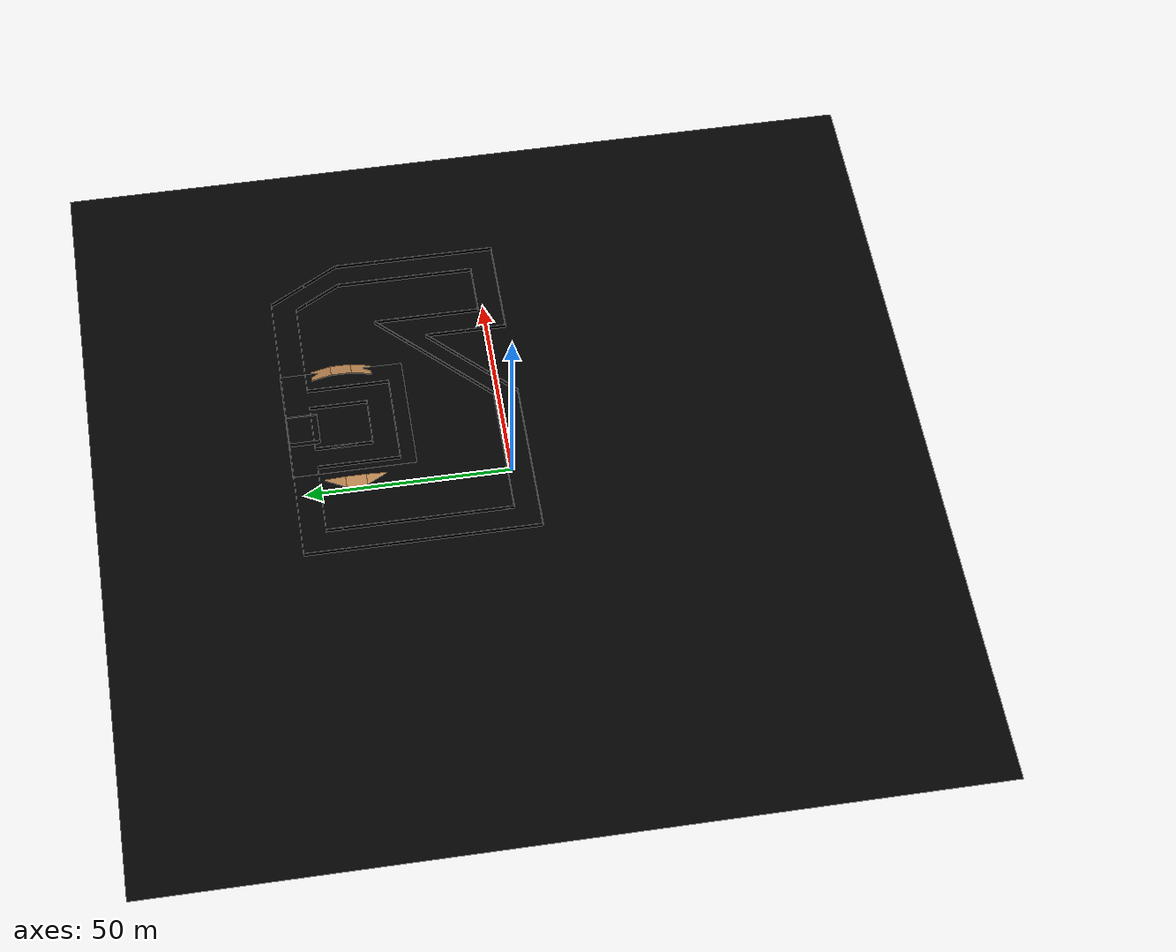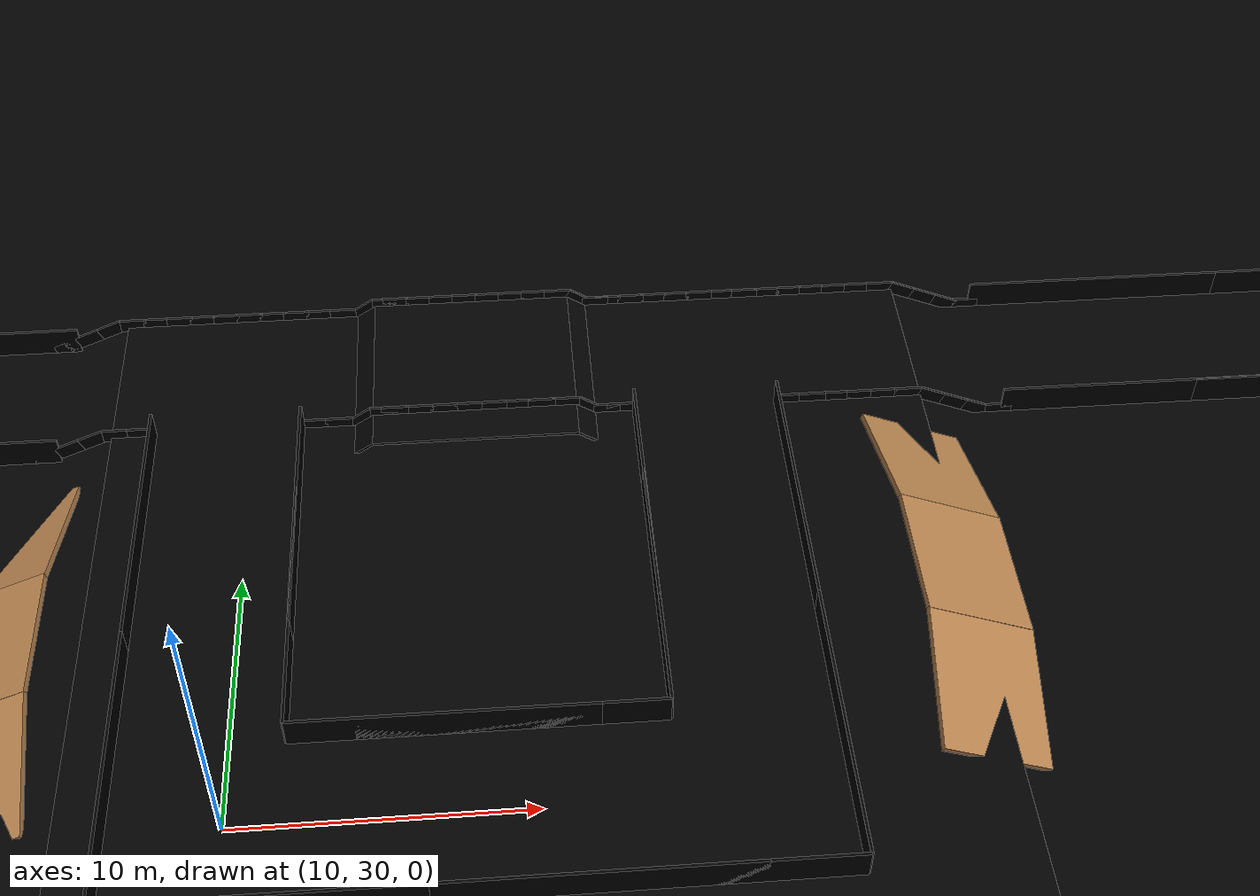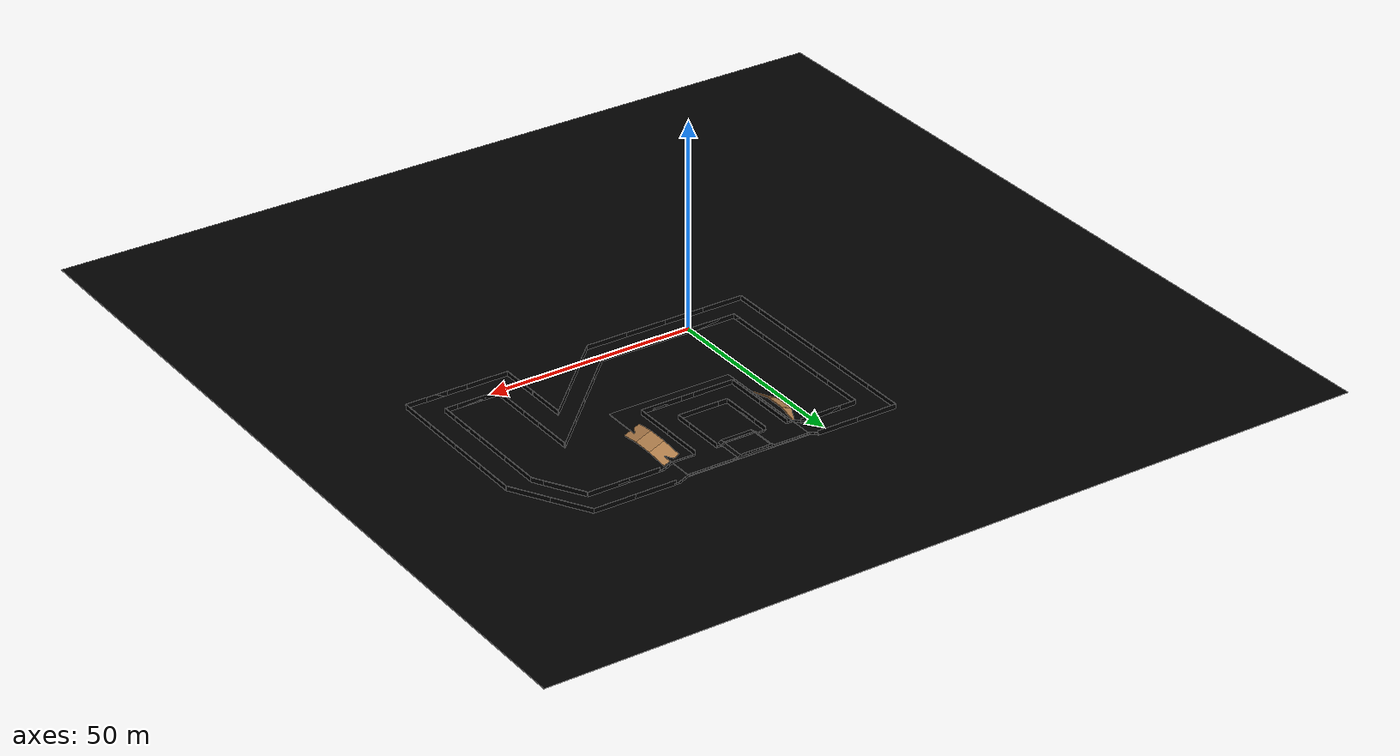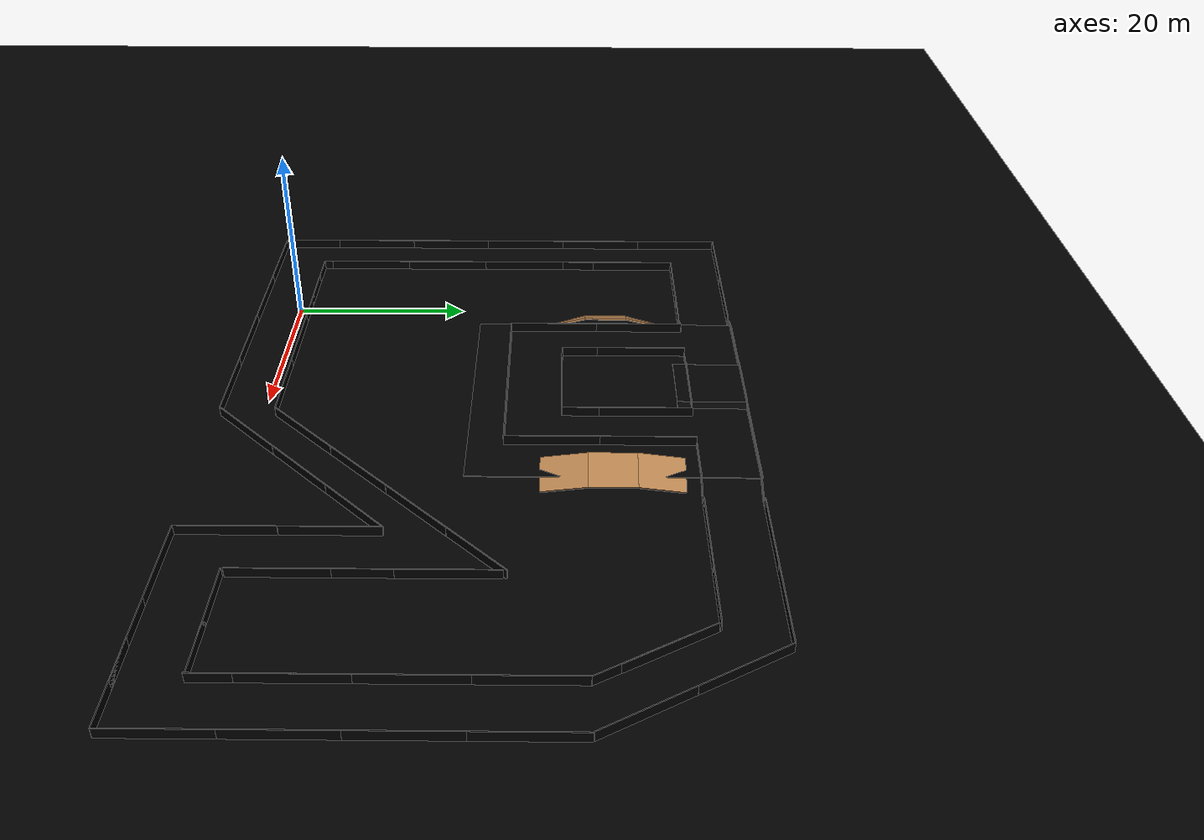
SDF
<sdf version="1.4">
 <world name="default">
  <light name="sun" type="directional">
   <pose>0 0 10 0 -0 0</pose>
   <diffuse>1.0 1.0 1.0 1</diffuse>
   <specular>0.2 0.2 0.2 1</specular>
   <attenuation>
    <range>1000</range>
    <constant>0.9</constant>
    <linear>0.01</linear>
    <quadratic>0.001</quadratic>
   </attenuation>
   <direction>-0.5 -0.5 -1.0</direction>
  </light>
  <include><uri>model://surface</uri></include>
  <include><uri>model://ramp_groundplane</uri><pose>20 37.5 1.1  0 0 0</pose></include>
  <include><uri>model://ramp_groundplane_2</uri><pose>18.34 48.55 1.573  0 0 0</pose></include>
  <include><uri>model://short_ramp</uri><pose>14.205 48.55 1.3  0 -0.6 0</pose></include>
  <include><uri>model://short_ramp</uri><pose>22.475 48.55 1.3  0 0.6 0</pose></include>
  <include><uri>model://3m_ramp</uri><pose>3.64 37.5 0.52  0 -0.4 0</pose></include>
  <include><uri>model://3m_ramp</uri><pose>36.36 37.5 0.52  0 0.4 0</pose></include>
  <include><uri>model://wall</uri><pose>38.1 52.3 0.15  0 0 0</pose></include>
  <include><uri>model://wall</uri><pose>37.2 52.3 0.3  0 0.4 0</pose></include>
  <include><uri>model://wall</uri><pose>36.3 52.3 0.68  0 0.4 0</pose></include>
  <include><uri>model://wall</uri><pose>35.4 52.3 1.06  0 0.4 0</pose></include>
  <include><uri>model://wall</uri><pose>34.5 52.3 1.24  0 0 0</pose></include>
  <include><uri>model://wall</uri><pose>33.6 52.3 1.24  0 0 0</pose></include>
  <include><uri>model://wall</uri><pose>32.7 52.3 1.24  0 0 0</pose></include>
  <include><uri>model://wall</uri><pose>31.8 52.3 1.24  0 0 0</pose></include>
  <include><uri>model://wall</uri><pose>30.9 52.3 1.24  0 0 0</pose></include>
  <include><uri>model://wall</uri><pose>30 52.3 1.24  0 0 0</pose></include>
  <include><uri>model://wall</uri><pose>29.1 52.3 1.24  0 0 0</pose></include>
  <include><uri>model://wall</uri><pose>28.2 52.3 1.24  0 0 0</pose></include>
  <include><uri>model://wall</uri><pose>27.3 52.3 1.24  0 0 0</pose></include>
  <include><uri>model://wall</uri><pose>26.4 52.3 1.24  0 0 0</pose></include>
  <include><uri>model://wall</uri><pose>25.5 52.3 1.24  0 0 0</pose></include>
  <include><uri>model://wall</uri><pose>24.6 52.3 1.24  0 0 0</pose></include>
  <include><uri>model://wall</uri><pose>23.7 52.3 1.24  0 0 0</pose></include>
  <include><uri>model://wall</uri><pose>23.2 52.3 1.24  0 0 0</pose></include>
  <include><uri>model://wall</uri><pose>22.5 52.3 1.44  0 0.6 0</pose></include>
  <include><uri>model://wall</uri><pose>21.7 52.3 1.683  0 0 0</pose></include>
  <include><uri>model://wall</uri><pose>20.8 52.3 1.683  0 0 0</pose></include>
  <include><uri>model://wall</uri><pose>19.9 52.3 1.683  0 0 0</pose></include>
  <include><uri>model://wall</uri><pose>19.0 52.3 1.683  0 0 0</pose></include>
  <include><uri>model://wall</uri><pose>18.1 52.3 1.683  0 0 0</pose></include>
  <include><uri>model://wall</uri><pose>17.2 52.3 1.683  0 0 0</pose></include>
  <include><uri>model://wall</uri><pose>16.3 52.3 1.683  0 0 0</pose></include>
  <include><uri>model://wall</uri><pose>15.4 52.3 1.683  0 0 0</pose></include>
  <include><uri>model://wall</uri><pose>15 52.3 1.683  0 0 0</pose></include>
  <include><uri>model://wall</uri><pose>14.22 52.3 1.44  0 -0.6 0</pose></include>
  <include><uri>model://wall</uri><pose>13.32 52.3 1.24  0 0 0</pose></include>
  <include><uri>model://wall</uri><pose>12.4 52.3 1.24  0 0 0</pose></include>
  <include><uri>model://wall</uri><pose>11.5 52.3 1.24  0 0 0</pose></include>
  <include><uri>model://wall</uri><pose>10.6 52.3 1.24  0 0 0</pose></include>
  <include><uri>model://wall</uri><pose>9.7 52.3 1.24  0 0 0</pose></include>
  <include><uri>model://wall</uri><pose>8.8 52.3 1.24  0 0 0</pose></include>
  <include><uri>model://wall</uri><pose>7.9 52.3 1.24  0 0 0</pose></include>
  <include><uri>model://wall</uri><pose>7 52.3 1.24  0 0 0</pose></include>
  <include><uri>model://wall</uri><pose>6.1 52.3 1.24  0 0 0</pose></include>
  <include><uri>model://wall</uri><pose>5.2 52.3 1.24  0 0 0</pose></include>
  <include><uri>model://wall</uri><pose>4.32 52.3 1.06  0 -0.4 0</pose></include>
  <include><uri>model://wall</uri><pose>3.4 52.3 0.67  0 -0.4 0</pose></include>
  <include><uri>model://wall</uri><pose>2.5 52.3 0.29  0 -0.4 0</pose></include>
  <include><uri>model://10m_wall</uri><pose>-2.0 52.3 0.15  0 0 0</pose></include>
  <include><uri>model://10m_wall</uri><pose>-12.0 52.3 0.15  0 0 0</pose></include>
  <include><uri>model://10m_wall</uri><pose>-17.0 47.3 0.15  0 0 1.5708</pose></include>
  <include><uri>model://10m_wall</uri><pose>-17.0 37.3 0.15  0 0 1.5708</pose></include>
  <include><uri>model://10m_wall</uri><pose>-17.0 27.3 0.15  0 0 1.5708</pose></include>
  <include><uri>model://10m_wall</uri><pose>-17.0 17.3 0.15  0 0 1.5708</pose></include>
  <include><uri>model://10m_wall</uri><pose>-17.0 7.3 0.15  0 0 1.5708</pose></include>
  <include><uri>model://10m_wall</uri><pose>-17.0 0.3 0.15  0 0 1.5708</pose></include>
  <include><uri>model://10m_wall</uri><pose>-12.0 -4.7 0.15  0 0 0</pose></include>
  <include><uri>model://10m_wall</uri><pose>-2.0 -4.7 0.15  0 0 0</pose></include>
  <include><uri>model://10m_wall</uri><pose>8.0 -4.7 0.15  0 0 0</pose></include>
  <include><uri>model://10m_wall</uri><pose>18.0 -4.7 0.15  0 0 0</pose></include>
  <include><uri>model://10m_wall</uri><pose>26.52 -1.15 0.15  0 0 0.785398</pose></include>
  <include><uri>model://10m_wall</uri><pose>33.0 5.35 0.15  0 0 0.785398</pose></include>
  <include><uri>model://10m_wall</uri><pose>39.48 11.85 0.15  0 0 0.785398</pose></include>
  <include><uri>model://10m_wall</uri><pose>43.0 10.35 0.15  0 0 1.5708</pose></include>
  <include><uri>model://10m_wall</uri><pose>43.0 0.3 0.15  0 0 1.5708</pose></include>
  <include><uri>model://10m_wall</uri><pose>48.0 -4.7 0.15  0 0 0</pose></include>
  <include><uri>model://10m_wall</uri><pose>58.0 -4.7 0.15  0 0 0</pose></include>
  <include><uri>model://10m_wall</uri><pose>63.0 -4.7 0.15  0 0 0</pose></include>
  <include><uri>model://10m_wall</uri><pose>68.0 0.3 0.15  0 0 1.5708</pose></include>
  <include><uri>model://10m_wall</uri><pose>68.0 10.2 0.15  0 0 1.5708</pose></include>
  <include><uri>model://10m_wall</uri><pose>68.0 20.1 0.15  0 0 1.5708</pose></include>
  <include><uri>model://10m_wall</uri><pose>68.0 30.0 0.15  0 0 1.5708</pose></include>
  <include><uri>model://10m_wall</uri><pose>65.45 39.38 0.15  0 0 2.094399</pose></include>
  <include><uri>model://10m_wall</uri><pose>60.5 47.98 0.15  0 0 2.094399</pose></include>
  <include><uri>model://10m_wall</uri><pose>53.0 52.3 0.15  0 0 0</pose></include>
  <include><uri>model://10m_wall</uri><pose>43.2 52.3 0.15  0 0 0</pose></include>
  <include><uri>model://10m_wall</uri><pose>50.6 46.3 0.15  0 0 0</pose></include>
  <include><uri>model://10m_wall</uri><pose>43.2 46.3 0.15  0 0 0</pose></include>
  <include><uri>model://10m_wall</uri><pose>59.55 39.28 0.15  0 0 2.094399</pose></include>
  <include><uri>model://10m_wall</uri><pose>58.15 41.78 0.15  0 0 2.094399</pose></include>
  <include><uri>model://10m_wall</uri><pose>62.0 6.1 0.15  0 0 1.5708</pose></include>
  <include><uri>model://10m_wall</uri><pose>62.0 10.2 0.15  0 0 1.5708</pose></include>
  <include><uri>model://10m_wall</uri><pose>62.0 20.1 0.15  0 0 1.5708</pose></include>
  <include><uri>model://10m_wall</uri><pose>62.0 30.0 0.15  0 0 1.5708</pose></include>
  <include><uri>model://10m_wall</uri><pose>54 1.3 0.15  0 0 0</pose></include>
  <include><uri>model://10m_wall</uri><pose>57 1.3 0.15  0 0 0</pose></include>
  <include><uri>model://10m_wall</uri><pose>49.0 6.5 0.15  0 0 1.5708</pose></include>
  <include><uri>model://10m_wall</uri><pose>49.0 16.35 0.15  0 0 1.5708</pose></include>
  <include><uri>model://10m_wall</uri><pose>49.0 22.1 0.15  0 0 1.5708</pose></include>
  <include><uri>model://10m_wall</uri><pose>26.52 4.85 0.15  0 0 0.785398</pose></include>
  <include><uri>model://10m_wall</uri><pose>33.0 11.35 0.15  0 0 0.785398</pose></include>
  <include><uri>model://10m_wall</uri><pose>39.48 17.85 0.15  0 0 0.785398</pose></include>
  <include><uri>model://10m_wall</uri><pose>45.5 23.9 0.15  0 0 0.785398</pose></include>
  <include><uri>model://10m_wall</uri><pose>-6.0 1.3 0.15  0 0 0</pose></include>
  <include><uri>model://10m_wall</uri><pose>-2.0 1.3 0.15  0 0 0</pose></include>
  <include><uri>model://10m_wall</uri><pose>8.0 1.3 0.15  0 0 0</pose></include>
  <include><uri>model://10m_wall</uri><pose>18.0 1.3 0.15  0 0 0</pose></include>
  <include><uri>model://10m_wall</uri><pose>-11.0 41.3 0.15  0 0 1.5708</pose></include>
  <include><uri>model://10m_wall</uri><pose>-11.0 37.3 0.15  0 0 1.5708</pose></include>
  <include><uri>model://10m_wall</uri><pose>-11.0 27.3 0.15  0 0 1.5708</pose></include>
  <include><uri>model://10m_wall</uri><pose>-11.0 17.3 0.15  0 0 1.5708</pose></include>
  <include><uri>model://10m_wall</uri><pose>-11.0 7.3 0.15  0 0 1.5708</pose></include>
  <include><uri>model://10m_wall</uri><pose>-11.0 6.3 0.15  0 0 1.5708</pose></include>
  <include><uri>model://wall</uri><pose>38.1 46.3 0.15  0 0 0</pose></include>
  <include><uri>model://wall</uri><pose>37.2 46.3 0.3  0 0.4 0</pose></include>
  <include><uri>model://wall</uri><pose>36.3 46.3 0.68  0 0.4 0</pose></include>
  <include><uri>model://wall</uri><pose>35.4 46.3 1.06  0 0.4 0</pose></include>
  <include><uri>model://wall</uri><pose>34.5 46.3 1.24  0 0 0</pose></include>
  <include><uri>model://wall</uri><pose>33.6 46.3 1.24  0 0 0</pose></include>
  <include><uri>model://wall</uri><pose>32.7 46.3 1.24  0 0 0</pose></include>
  <include><uri>model://wall</uri><pose>31.8 46.3 1.24  0 0 0</pose></include>
  <include><uri>model://wall</uri><pose>30.9 46.3 1.24  0 0 0</pose></include>
  <include><uri>model://wall</uri><pose>30 46.3 1.24  0 0 0</pose></include>
  <include><uri>model://wall</uri><pose>23.7 46.3 1.24  0 0 0</pose></include>
  <include><uri>model://wall</uri><pose>23.2 46.3 1.24  0 0 0</pose></include>
  <include><uri>model://wall</uri><pose>22.5 46.3 1.44  0 0.6 0</pose></include>
  <include><uri>model://wall</uri><pose>21.7 46.3 1.683  0 0 0</pose></include>
  <include><uri>model://wall</uri><pose>20.8 46.3 1.683  0 0 0</pose></include>
  <include><uri>model://wall</uri><pose>19.9 46.3 1.683  0 0 0</pose></include>
  <include><uri>model://wall</uri><pose>19.0 46.3 1.683  0 0 0</pose></include>
  <include><uri>model://wall</uri><pose>18.1 46.3 1.683  0 0 0</pose></include>
  <include><uri>model://wall</uri><pose>17.2 46.3 1.683  0 0 0</pose></include>
  <include><uri>model://wall</uri><pose>16.3 46.3 1.683  0 0 0</pose></include>
  <include><uri>model://wall</uri><pose>15.4 46.3 1.683  0 0 0</pose></include>
  <include><uri>model://wall</uri><pose>15 46.3 1.683  0 0 0</pose></include>
  <include><uri>model://wall</uri><pose>14.22 46.3 1.44  0 -0.6 0</pose></include>
  <include><uri>model://wall</uri><pose>13.32 46.3 1.24  0 0 0</pose></include>
  <include><uri>model://wall</uri><pose>12.4 46.3 1.24  0 0 0</pose></include>
  <include><uri>model://wall</uri><pose>6.1 46.3 1.24  0 0 0</pose></include>
  <include><uri>model://wall</uri><pose>5.2 46.3 1.24  0 0 0</pose></include>
  <include><uri>model://wall</uri><pose>4.32 46.3 1.06  0 -0.4 0</pose></include>
  <include><uri>model://wall</uri><pose>3.4 46.3 0.67  0 -0.4 0</pose></include>
  <include><uri>model://wall</uri><pose>2.5 46.3 0.29  0 -0.4 0</pose></include>
  <include><uri>model://10m_wall</uri><pose>-2.0 46.3 0.15  0 0 0</pose></include>
  <include><uri>model://10m_wall</uri><pose>-6.0 46.3 0.15  0 0 0</pose></include>
  <include><uri>model://10m_wall</uri><pose>6.6 41.3 1.24  0 0 1.5708</pose></include>
  <include><uri>model://10m_wall</uri><pose>6.6 31.3 1.24  0 0 1.5708</pose></include>
  <include><uri>model://10m_wall</uri><pose>11.6 26.3 1.24  0 0 0</pose></include>
  <include><uri>model://10m_wall</uri><pose>21.5 26.3 1.24  0 0 0</pose></include>
  <include><uri>model://10m_wall</uri><pose>24.5 26.3 1.24  0 0 0</pose></include>
  <include><uri>model://10m_wall</uri><pose>29.5 41.3 1.24  0 0 1.5708</pose></include>
  <include><uri>model://10m_wall</uri><pose>29.5 31.3 1.24  0 0 1.5708</pose></include>
  <include><uri>model://10m_wall</uri><pose>12.0 41.3 1.24  0 0 1.5708</pose></include>
  <include><uri>model://10m_wall</uri><pose>12.0 37.3 1.24  0 0 1.5708</pose></include>
  <include><uri>model://10m_wall</uri><pose>24.2 41.3 1.24  0 0 1.5708</pose></include>
  <include><uri>model://10m_wall</uri><pose>24.2 37.3 1.24  0 0 1.5708</pose></include>
  <include><uri>model://10m_wall</uri><pose>17 32.3 1.24  0 0 0</pose></include>
  <include><uri>model://10m_wall</uri><pose>19.2 32.3 1.24  0 0 0</pose></include>
  <physics type="ode">
   <max_step_size>0.001</max_step_size>
   <real_time_factor>1</real_time_factor>
   <real_time_update_rate>1000</real_time_update_rate>
   <gravity>0 0 -9.8</gravity>
  </physics>
  <scene>
   <ambient>1 1 1 1</ambient>
   <background>1 1 1 1</background>
   <shadows>1</shadows>
   <sky><clouds><speed>12</speed></clouds></sky>
  </scene>
  <spherical_coordinates>
   <surface_model>EARTH_WGS84</surface_model>
   <latitude_deg>0</latitude_deg>
   <longitude_deg>0</longitude_deg>
   <elevation>0</elevation>
   <heading_deg>0</heading_deg>
  </spherical_coordinates>
 </world>
</sdf>

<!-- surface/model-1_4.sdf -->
<sdf version="1.4">
  <model name="black_ice_lower_friction">
    <static>true</static>
    <link name="link">
      <collision name="collision">
        <geometry>
          <box>
            <size>200 200 0.1</size>
          </box>
        </geometry>
        <surface>
          <friction>
            <ode>
              <mu>1</mu>
              <mu2>1</mu2>
            </ode>
          </friction>
        </surface>
      </collision>
      <visual name="visual_1">
        <pose>0 0 0 0 0 0</pose>
        <cast_shadows>false</cast_shadows>
        <geometry>
          <box>
            <size>200 200 0.1</size>
          </box>
        </geometry>
        <material>
          <ambient>109 112 113 1</ambient>
          <diffuse>0 0 0 1</diffuse>
          <specular>0 0 0 0</specular>
          <emissive>0 0 0 1</emissive>
        </material>
      </visual>
    </link>
  </model>
</sdf>

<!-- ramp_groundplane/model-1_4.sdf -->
<sdf version="1.4">
  <model name="ramp_groundplane">
    <static>true</static>
    <link name="link">
      <collision name="collision">
        <geometry>
          <box>
            <size>30 30 0.1</size>
          </box>
        </geometry>
        <surface>
          <friction>
            <ode>
              <mu>1</mu>
              <mu2>1</mu2>
            </ode>
          </friction>
        </surface>
      </collision>
      <visual name="visual_1">
        <pose>0 0 0 0 0 0</pose>
        <cast_shadows>false</cast_shadows>
        <geometry>
          <box>
            <size>30 30 0.1</size>
          </box>
        </geometry>
        <material>
          <ambient>137 179 194 1</ambient>
          <diffuse>0 0 0 1</diffuse>
          <specular>0 0 0 0</specular>
          <emissive>0 0 0 1</emissive>
        </material>
      </visual>
    </link>
  </model>
</sdf>

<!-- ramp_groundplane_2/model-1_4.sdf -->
<sdf version="1.4">
  <model name="ramp_groundplane">
    <static>true</static>
    <link name="link">
      <collision name="collision">
        <geometry>
          <box>
            <size>7.5 7.5 0.1</size>
          </box>
        </geometry>
        <surface>
          <friction>
            <ode>
              <mu>1</mu>
              <mu2>1</mu2>
            </ode>
          </friction>
        </surface>
      </collision>
      <visual name="visual_1">
        <pose>0 0 0 0 0 0</pose>
        <cast_shadows>false</cast_shadows>
        <geometry>
          <box>
            <size>7.5 7.5 0.1</size>
          </box>
        </geometry>
        <material>
          <ambient>229 237 239 1</ambient>
          <diffuse>0 0 0 1</diffuse>
          <specular>0 0 0 0</specular>
          <emissive>0 0 0 1</emissive>
        </material>
      </visual>
    </link>
  </model>
</sdf>

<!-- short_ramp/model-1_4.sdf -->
<sdf version="1.4">
  <model name="basic_ramp">
    <static>true</static>
    <link name="link">
      <collision name="collision">
        <geometry>
          <box>
            <size>1 7.5 0.1</size>
          </box>
        </geometry>
        <surface>
          <friction>
            <ode>
              <mu>1</mu>
              <mu2>1</mu2>
              <fdir1>0.000000 0.000000 0.000000</fdir1>
              <slip1>0.000000</slip1>
              <slip2>0.000000</slip2>
            </ode>
          </friction>
          <bounce>
            <restitution_coefficient>0.000000</restitution_coefficient>
            <threshold>100000.000000</threshold>
          </bounce>
          <contact>
            <ode>
              <soft_cfm>0.000000</soft_cfm>
              <soft_erp>0.200000</soft_erp>
              <kp>100000.000000</kp>
              <kd>1.000000</kd>
              <max_vel>100.000000</max_vel>
              <min_depth>0.001000</min_depth>
            </ode>
          </contact>
        </surface>
      </collision>
      <visual name="visual_1">
        <pose>0 0 0  0 0 0</pose>
        <cast_shadows>true</cast_shadows>
        <geometry>
          <box>
            <size>1 7.5 0.1</size>
          </box>
        </geometry>
        <material>
          <ambient>229 237 239 1</ambient>
          <diffuse>0 0 0 1</diffuse>
          <specular>0 0 0 0</specular>
          <emissive>0 0 0 1</emissive>
        </material>
      </visual>
    </link>
  </model>
</sdf>

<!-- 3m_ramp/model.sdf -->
<sdf version="1.4">
  <model name="basic_ramp">
    <static>true</static>
    <link name="link">
      <collision name="collision">
        <geometry>
          <box>
            <size>8 10 0.2</size>
          </box>
        </geometry>
        <surface>
          <friction>
            <ode>
              <mu>10</mu>
              <mu2>10</mu2>
            </ode>
          </friction>
        </surface>
      </collision>
      <visual name="visual_1">
        <pose>-2 4.9 0  -0.2 0 0</pose>
        <cast_shadows>false</cast_shadows>
        <geometry>
          <box>
            <size>4 5 0.2</size>
          </box>
        </geometry>
        <material>
          <script>
            <uri>file://media/materials/scripts/gazebo.material</uri>
            <name>Gazebo/Wood</name>
          </script>
        </material>
      </visual>
      <visual name="visual_2">
        <pose>-2 -4.9 0  0.2 0 0</pose>
        <cast_shadows>false</cast_shadows>
        <geometry>
          <box>
            <size>4 5 0.2</size>
          </box>
        </geometry>
        <material>
          <script>
            <uri>file://media/materials/scripts/gazebo.material</uri>
            <name>Gazebo/Wood</name>
          </script>
        </material>
      </visual>
      <visual name="visual_3">
        <pose>-2 0 0.5  0 0 0</pose>
        <cast_shadows>false</cast_shadows>
        <geometry>
          <box>
            <size>4 5 0.2</size>
          </box>
        </geometry>
        <material>
          <script>
            <uri>file://media/materials/scripts/gazebo.material</uri>
            <name>Gazebo/Wood</name>
          </script>
        </material>
      </visual>
    </link>
  </model>
</sdf>

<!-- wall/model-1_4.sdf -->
<sdf version="1.4">
  <model name="basic_ramp">
    <static>true</static>
    <link name="link">
      <collision name="collision">
        <geometry>
          <box>
            <size>1 0.1 3</size>
          </box>
        </geometry>
        <surface>
          <friction>
            <ode>
              <mu>0.5</mu>
              <mu2>0.5</mu2>
              <fdir1>0.000000 0.000000 0.000000</fdir1>
              <slip1>0.000000</slip1>
              <slip2>0.000000</slip2>
            </ode>
          </friction>
          <bounce>
            <restitution_coefficient>0.000000</restitution_coefficient>
            <threshold>100000.000000</threshold>
          </bounce>
          <contact>
            <ode>
              <soft_cfm>0.000000</soft_cfm>
              <soft_erp>0.200000</soft_erp>
              <kp>100000.000000</kp>
              <kd>1.000000</kd>
              <max_vel>100.000000</max_vel>
              <min_depth>0.001000</min_depth>
            </ode>
          </contact>
        </surface>
      </collision>
      <visual name="visual_1">
        <pose>0 0 0  0 0 0</pose>
        <cast_shadows>true</cast_shadows>
        <geometry>
          <box>
            <size>1 0.1 0.5</size>
          </box>
        </geometry>
        <material>
          <ambient>238 156 48 1</ambient>
          <diffuse>0 0 0 1</diffuse>
          <specular>0 0 0 0</specular>
          <emissive>0 0 0 1</emissive>
        </material>
      </visual>
    </link>
  </model>
</sdf>

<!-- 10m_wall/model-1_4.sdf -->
<sdf version="1.4">
  <model name="basic_ramp">
    <static>true</static>
    <link name="link">
      <collision name="collision">
        <geometry>
          <box>
            <size>10 0.1 3</size>
          </box>
        </geometry>
        <surface>
          <friction>
            <ode>
              <mu>0.5</mu>
              <mu2>0.5</mu2>
              <fdir1>0.000000 0.000000 0.000000</fdir1>
              <slip1>0.000000</slip1>
              <slip2>0.000000</slip2>
            </ode>
          </friction>
          <bounce>
            <restitution_coefficient>0.000000</restitution_coefficient>
            <threshold>100000.000000</threshold>
          </bounce>
          <contact>
            <ode>
              <soft_cfm>0.000000</soft_cfm>
              <soft_erp>0.200000</soft_erp>
              <kp>100000.000000</kp>
              <kd>1.000000</kd>
              <max_vel>100.000000</max_vel>
              <min_depth>0.001000</min_depth>
            </ode>
          </contact>
        </surface>
      </collision>
      <visual name="visual_1">
        <pose>0 0 0  0 0 0</pose>
        <cast_shadows>true</cast_shadows>
        <geometry>
          <box>
            <size>10 0.1 2</size>
          </box>
        </geometry>
        <material>
          <ambient>238 156 48 1</ambient>
          <diffuse>0 0 0 1</diffuse>
          <specular>0 0 0 0</specular>
          <emissive>0 0 0 1</emissive>
        </material>
      </visual>
    </link>
  </model>
</sdf>
